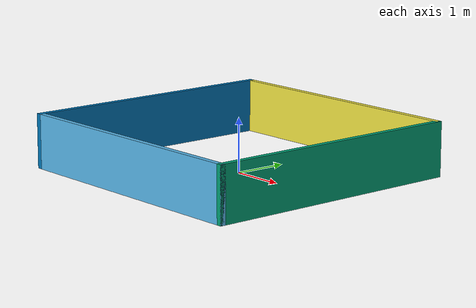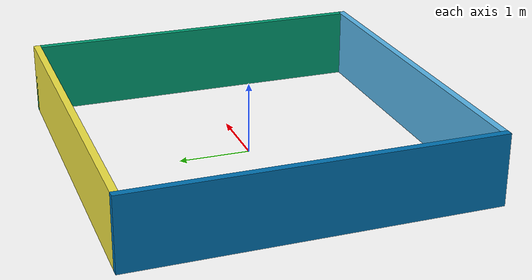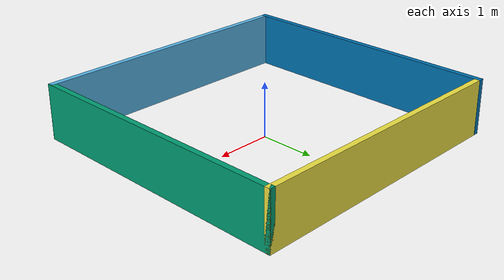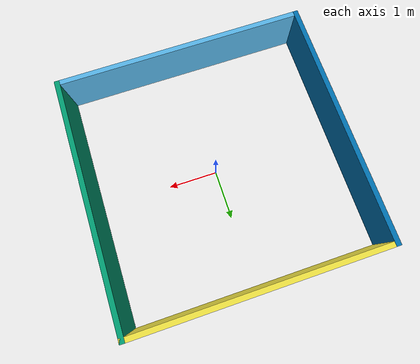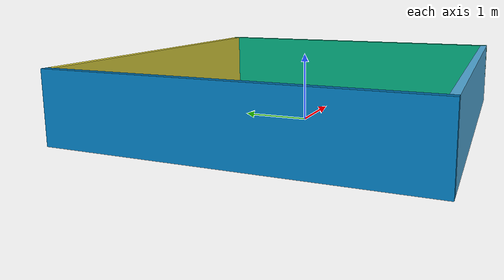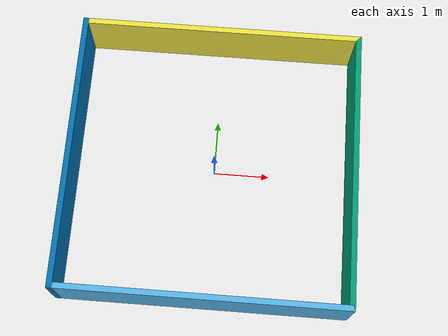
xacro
<?xml version="1.0"?>
<robot xmlns:xacro="http://www.ros.org/wiki/xacro"
       name="simple_room">

  <xacro:include filename="$(find robotino_gazebo_worlds)/urdf/materials.urdf.xacro" />
  <xacro:include filename="$(find robotino_gazebo_worlds)/urdf/common.xacro" />

  <property name="size_total_x" value="5.0" />
  <property name="size_total_y" value="5.0" />
  <property name="wall_depth" value="0.1" />
  <property name="size_z_wall" value="1" />

  <xacro:macro name="simple_room" params="name">

  <!-- world -->
  <link name="world"/>

  <!-- walls -->
  <!-- wall_00 -->
  <link name="wall_00">
    <xacro:box_inertial x="${size_total_x}" y="${wall_depth}" z="${size_z_wall}" mass="5.0">
      <origin xyz="0 0 0" rpy="0 0 0" />
    </xacro:box_inertial>
    <visual>
      <origin xyz="0 0 0" />
      <geometry>
        <box size="${size_total_x} ${wall_depth} ${size_z_wall}" />
      </geometry>
    </visual>
    <collision>
      <origin xyz="0 0 0" />
      <geometry>
        <box size="${size_total_x} ${wall_depth} ${size_z_wall}" />
      </geometry>
    </collision>
  </link>

  <gazebo reference="wall_00">
    <material>ROBOTINO/Wall</material>
  </gazebo>

  <joint name="joint_wall_00" type="fixed">
    <origin xyz="0.0 ${-size_total_x/2+wall_depth/2} ${size_z_wall/2}" rpy="0 0 0" />
    <parent link="world" />
    <child link="wall_00" />
  </joint>

  <!-- wall_01 -->
  <link name="wall_01">
    <xacro:box_inertial x="${wall_depth}" y="${size_total_y}" z="${size_z_wall}" mass="5.0">
      <origin xyz="0 0 0" rpy="0 0 0" />
    </xacro:box_inertial>
    <visual>
      <origin xyz="0 0 0" />
      <geometry>
        <box size="${wall_depth} ${size_total_y} ${size_z_wall}" />
      </geometry>
    </visual>
    <collision>
      <origin xyz="0 0 0" />
      <geometry>
        <box size="${wall_depth} ${size_total_y} ${size_z_wall}" />
      </geometry>
    </collision>
  </link>

  <gazebo reference="wall_01">
    <material>ROBOTINO/Wall</material>
  </gazebo>

  <joint name="joint_wall_01" type="fixed">
    <origin xyz="${size_total_x/2-wall_depth/2} 0.0 ${size_z_wall/2}" rpy="0 0 0" />
    <parent link="world" />
    <child link="wall_01" />
  </joint>

  <!-- wall_02 -->
  <link name="wall_02">
    <xacro:box_inertial x="${size_total_x}" y="${wall_depth}" z="${size_z_wall}" mass="5.0">
      <origin xyz="0 0 0" rpy="0 0 0" />
    </xacro:box_inertial>
    <visual>
      <origin xyz="0 0 0" />
      <geometry>
        <box size="${size_total_x} ${wall_depth} ${size_z_wall}" />
      </geometry>
    </visual>
    <collision>
      <origin xyz="0 0 0" />
      <geometry>
        <box size="${size_total_x} ${wall_depth} ${size_z_wall}" />
      </geometry>
    </collision>
  </link>

  <gazebo reference="wall_02">
    <material>ROBOTINO/Wall</material>
  </gazebo>

  <joint name="joint_wall_02" type="fixed">
    <origin xyz="0.0 ${size_total_x/2-wall_depth/2} ${size_z_wall/2}" rpy="0 0 0" />
    <parent link="world" />
    <child link="wall_02" />
  </joint>

  <!-- wall_03 -->
  <link name="wall_03">
    <xacro:box_inertial x="${wall_depth}" y="${size_total_y}" z="${size_z_wall}" mass="5.0">
      <origin xyz="0 0 0" rpy="0 0 0" />
    </xacro:box_inertial>
    <visual>
      <origin xyz="0 0 0" />
      <geometry>
        <box size="${wall_depth} ${size_total_y} ${size_z_wall}" />
      </geometry>
    </visual>
    <collision>
      <origin xyz="0 0 0" />
      <geometry>
        <box size="${wall_depth} ${size_total_y} ${size_z_wall}" />
      </geometry>
    </collision>
  </link>

  <gazebo reference="wall_03">
    <material>ROBOTINO/Wall</material>
  </gazebo>

  <joint name="joint_wall_03" type="fixed">
    <origin xyz="-${size_total_x/2+wall_depth/2} 0.0 ${size_z_wall/2}" rpy="0 0 0" />
    <parent link="world" />
    <child link="wall_03" />
  </joint>

  </xacro:macro>

  <xacro:simple_room name="simple_room" />

</robot>

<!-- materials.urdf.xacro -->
<robot>

  <material name="ROBOTINO/Wall">
    <color rgba="1.0 1.0 1.0 1.0"/>
  </material>

</robot>
